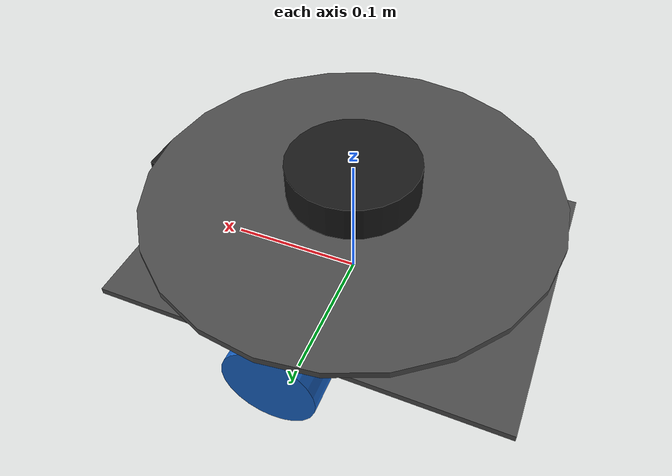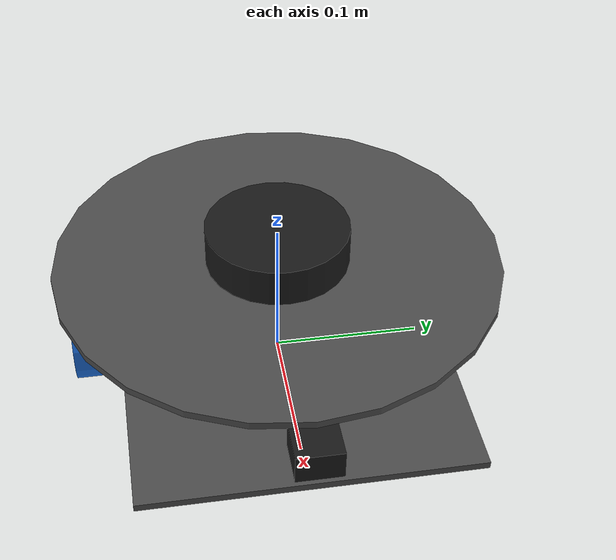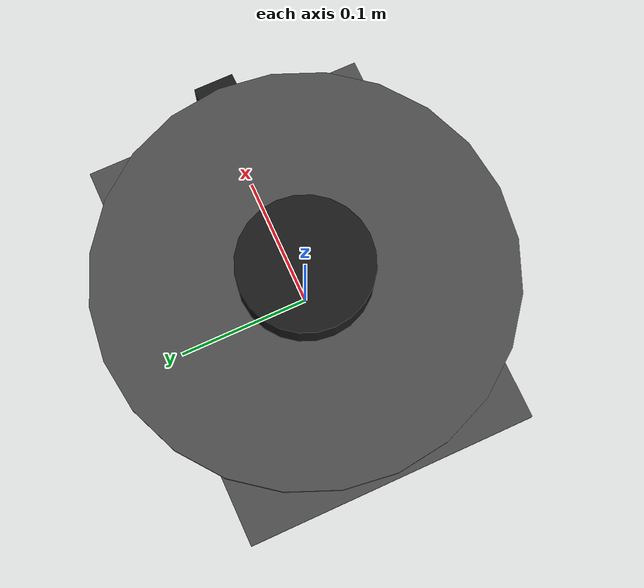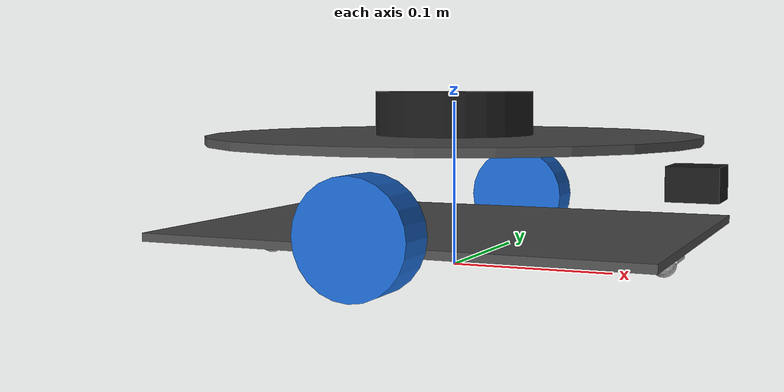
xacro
<?xml version="1.0"?>
<robot name="agv_robot" xmlns:xacro="http://www.ros.org/wiki/xacro">

  <!-- ====================== PROPERTIES ======================== -->

  <xacro:property name="platform_radius"    value="0.150"/>
  <xacro:property name="platform_thickness" value="0.005"/>

  <xacro:property name="wheel_radius"  value="0.0325"/>
  <xacro:property name="wheel_width"   value="0.026"/>
  <xacro:property name="wheel_track"   value="0.255"/>

  <!-- 지면 기준 절대 z → base_link 기준 상대 z 로 변환 시 wheel_radius 빼기 -->
  <xacro:property name="lower_plate_z" value="0.0225"/>
  <xacro:property name="upper_plate_z" value="0.0775"/>

  <xacro:property name="caster_radius" value="0.0075"/>
  <xacro:property name="caster_x"      value="0.130"/>

  <xacro:property name="lidar_radius"  value="0.0482"/>
  <xacro:property name="lidar_height"  value="0.0263"/>

  <xacro:property name="camera_x"      value="0.148"/>
  <xacro:property name="camera_z"      value="0.055"/>     <!-- ground 기준 -->

  <!-- ====================== INERTIA MACROS ==================== -->

  <xacro:macro name="inertia_cylinder" params="mass r l">
    <inertial>
      <mass value="${mass}"/>
      <inertia
        ixx="${mass*(3*r*r+l*l)/12}"
        ixy="0"
        ixz="0"
        iyy="${mass*(3*r*r+l*l)/12}"
        iyz="0"
        izz="${mass*r*r/2}"/>
    </inertial>
  </xacro:macro>

  <xacro:macro name="inertia_sphere" params="mass r">
    <inertial>
      <mass value="${mass}"/>
      <inertia
        ixx="${2*mass*r*r/5}"
        ixy="0"
        ixz="0"
        iyy="${2*mass*r*r/5}"
        iyz="0"
        izz="${2*mass*r*r/5}"/>
    </inertial>
  </xacro:macro>

  <xacro:macro name="inertia_box" params="mass x y z">
    <inertial>
      <mass value="${mass}"/>
      <inertia
        ixx="${mass*(y*y+z*z)/12}"
        ixy="0"
        ixz="0"
        iyy="${mass*(x*x+z*z)/12}"
        iyz="0"
        izz="${mass*(x*x+y*y)/12}"/>
    </inertial>
  </xacro:macro>

  <!-- ====================== BASE LINKS ======================== -->

  <link name="base_footprint"/>

  <link name="base_link">
    <visual>
      <geometry><box size="0.001 0.001 0.001"/></geometry>
    </visual>

    <!-- [추가] base_link inertial: Gazebo 자동 inertia 경고 방지용 더미 -->
    <xacro:inertia_box mass="0.001" x="0.001" y="0.001" z="0.001"/>
  </link>

  <joint name="base_footprint_joint" type="fixed">
    <parent link="base_footprint"/>
    <child link="base_link"/>
    <origin xyz="0 0 ${wheel_radius}" rpy="0 0 0"/>
  </joint>

  <!-- ====================== LOWER PLATE ======================= -->

  <link name="lower_plate">
    <visual>
      <geometry>
        <box size="${2*platform_radius}
                   ${wheel_track - wheel_width - 0.010}
                   ${platform_thickness}"/>
      </geometry>
      <material name="dark_gray">
        <color rgba="0.3 0.3 0.3 1.0"/>
      </material>
    </visual>

    <!-- collision: 바퀴(wheel_width/2 + 5mm 여유) 구간을 제외한 중앙 box로 근사 -->
    <!-- Y폭 = 2 * (wheel_track/2 - wheel_width/2 - 0.005) = 0.219m -->
    <collision>
      <geometry>
        <box size="${2*platform_radius}
                   ${wheel_track - wheel_width - 0.010}
                   ${platform_thickness}"/>
      </geometry>
    </collision>

    <xacro:inertia_cylinder
      mass="0.8"
      r="${platform_radius}"
      l="${platform_thickness}"/>
  </link>

  <joint name="lower_plate_joint" type="fixed">
    <parent link="base_link"/>
    <child link="lower_plate"/>
    <origin xyz="0 0 ${lower_plate_z - wheel_radius}" rpy="0 0 0"/>
  </joint>

  <!-- ====================== UPPER PLATE ======================= -->

  <link name="upper_plate">
    <visual>
      <geometry>
        <cylinder radius="${platform_radius}"
                  length="${platform_thickness}"/>
      </geometry>
      <material name="dark_gray"/>
    </visual>

    <collision>
      <geometry>
        <cylinder radius="${platform_radius}"
                  length="${platform_thickness}"/>
      </geometry>
    </collision>

    <xacro:inertia_cylinder
      mass="0.6"
      r="${platform_radius}"
      l="${platform_thickness}"/>
  </link>

  <joint name="upper_plate_joint" type="fixed">
    <parent link="base_link"/>
    <child link="upper_plate"/>
    <origin xyz="0 0 ${upper_plate_z - wheel_radius}" rpy="0 0 0"/>
  </joint>

  <!-- ====================== DRIVE WHEELS ====================== -->

  <xacro:macro name="drive_wheel" params="name side">

    <link name="${name}">
      <visual>
        <geometry>
          <cylinder radius="${wheel_radius}"
                    length="${wheel_width}"/>
        </geometry>
        <material name="blue">
          <color rgba="0.1 0.4 0.8 1.0"/>
        </material>
      </visual>

      <collision>
        <geometry>
          <cylinder radius="${wheel_radius}"
                    length="${wheel_width}"/>
        </geometry>
      </collision>

      <xacro:inertia_cylinder
        mass="0.15"
        r="${wheel_radius}"
        l="${wheel_width}"/>
    </link>

    <!-- [수정] 휠축: 표준 설정으로 복원. cylinder 길이방향(Z)을 Y축으로 회전시킴 -->
    <joint name="${name}_joint" type="continuous">
      <parent link="base_link"/>
      <child link="${name}"/>
      <origin xyz="0 ${side * wheel_track/2} 0"
              rpy="${pi/2} 0 0"/>
      <axis xyz="0 0 1"/>
      <dynamics damping="0.1" friction="0.1"/>
    </joint>

  </xacro:macro>

  <xacro:drive_wheel name="left_wheel"  side=" 1"/>
  <xacro:drive_wheel name="right_wheel" side="-1"/>

  <!-- ====================== BALL CASTERS ====================== -->
  <!-- [수정] ball joint를 fixed → 2축 continuous로 변경 (자유 회전 허용)   -->
  <!-- housing → (Y축 회전) → yaw_link → (X축 회전) → ball                  -->

  <xacro:macro name="ball_caster" params="name cx">

    <link name="${name}_housing">
      <visual>
        <geometry><box size="0.02 0.02 0.01"/></geometry>
        <material name="light_gray"><color rgba="0.7 0.7 0.7 1.0"/></material>
      </visual>
      <xacro:inertia_box mass="0.01" x="0.02" y="0.02" z="0.01"/>
    </link>

    <joint name="${name}_housing_joint" type="fixed">
      <parent link="base_link"/>
      <child link="${name}_housing"/>
      <origin xyz="${cx} 0 ${-wheel_radius + caster_radius + 0.0075}"
              rpy="0 0 0"/>
    </joint>

    <!-- [추가] 중간 더미 링크: 2축 자유 회전을 위한 가상 링크 -->
    <link name="${name}_yaw_link">
      <xacro:inertia_sphere mass="0.001" r="${caster_radius}"/>
    </link>

    <!-- 첫 번째 회전축: Z축 (좌우 미끄러짐 시 회전) -->
    <joint name="${name}_yaw_joint" type="continuous">
      <parent link="${name}_housing"/>
      <child link="${name}_yaw_link"/>
      <origin xyz="0 0 ${-caster_radius}" rpy="0 0 0"/>
      <axis xyz="0 0 1"/>
      <dynamics damping="0.0" friction="0.0"/>
    </joint>

    <link name="${name}_ball">
      <visual>
        <geometry><sphere radius="${caster_radius}"/></geometry>
        <material name="light_gray"/>
      </visual>
      <collision>
        <geometry><sphere radius="${caster_radius}"/></geometry>
      </collision>
      <xacro:inertia_sphere mass="0.02" r="${caster_radius}"/>
    </link>

    <!-- 두 번째 회전축: X축 (전후진 시 굴러감) -->
    <joint name="${name}_ball_joint" type="continuous">
      <parent link="${name}_yaw_link"/>
      <child link="${name}_ball"/>
      <origin xyz="0 0 0" rpy="0 0 0"/>
      <axis xyz="1 0 0"/>
      <dynamics damping="0.0" friction="0.0"/>
    </joint>

  </xacro:macro>

  <xacro:ball_caster name="front_caster" cx=" ${caster_x}"/>
  <xacro:ball_caster name="rear_caster"  cx="-${caster_x}"/>

  <!-- ========================= LIDAR ========================== -->

  <link name="lidar_link">
    <visual>
      <geometry>
        <cylinder radius="${lidar_radius}"
                  length="${lidar_height}"/>
      </geometry>
      <material name="black"><color rgba="0.1 0.1 0.1 1.0"/></material>
    </visual>

    <collision>
      <geometry>
        <cylinder radius="${lidar_radius}"
                  length="${lidar_height}"/>
      </geometry>
    </collision>

    <xacro:inertia_cylinder
      mass="0.17"
      r="${lidar_radius}"
      l="${lidar_height}"/>
  </link>

  <joint name="lidar_joint" type="fixed">
    <parent link="upper_plate"/>
    <child link="lidar_link"/>
    <origin xyz="0 0 ${platform_thickness/2 + lidar_height/2}"
            rpy="0 0 0"/>
  </joint>

  <!-- ======================== CAMERA ========================== -->

  <link name="camera_link">
    <visual>
      <geometry><box size="0.03 0.03 0.02"/></geometry>
      <material name="black"/>
    </visual>

    <collision>
      <geometry><box size="0.03 0.03 0.02"/></geometry>
    </collision>

    <xacro:inertia_box mass="0.05" x="0.03" y="0.03" z="0.02"/>
  </link>

  <joint name="camera_joint" type="fixed">
    <parent link="base_link"/>
    <child link="camera_link"/>
    <origin xyz="${camera_x} 0 ${camera_z - wheel_radius}"
            rpy="0 0 0"/>
  </joint>

  <!-- camera_optical_frame: ROS 카메라 좌표계 (Z-forward) -->
  <link name="camera_optical_frame"/>

  <joint name="camera_optical_joint" type="fixed">
    <parent link="camera_link"/>
    <child link="camera_optical_frame"/>
    <origin xyz="0 0 0" rpy="${-pi/2} 0 ${-pi/2}"/>
  </joint>

  <!-- ========== GAZEBO HARMONIC (gz-sim) 플러그인 ============ -->

  <!-- 차동구동 -->
  <gazebo>
    <plugin
      filename="gz-sim-diff-drive-system"
      name="gz::sim::systems::DiffDrive">

      <left_joint>left_wheel_joint</left_joint>
      <right_joint>right_wheel_joint</right_joint>

      <wheel_separation>${wheel_track}</wheel_separation>
      <wheel_radius>${wheel_radius}</wheel_radius>

      <max_linear_acceleration>1.0</max_linear_acceleration>
      <max_angular_acceleration>2.0</max_angular_acceleration>

      <topic>cmd_vel</topic>
      <odom_topic>odom</odom_topic>

      <frame_id>odom</frame_id>
      <child_frame_id>base_footprint</child_frame_id>
    </plugin>
  </gazebo>

  <!-- 볼캐스터 마찰 제거 -->
  <gazebo reference="front_caster_ball">
    <mu1>0.0</mu1>
    <mu2>0.0</mu2>
  </gazebo>
  <gazebo reference="rear_caster_ball">
    <mu1>0.0</mu1>
    <mu2>0.0</mu2>
  </gazebo>

  <!-- [수정] 바퀴 마찰: mu1=2.0, mu2=0.2 (이전 메시지 값) -->
  <gazebo reference="left_wheel">
    <mu1>1.0</mu1>
    <mu2>1.0</mu2>
    <kp>1e6</kp>
    <kd>1.0</kd>
  </gazebo>

  <gazebo reference="right_wheel">
    <mu1>1.0</mu1>
    <mu2>1.0</mu2>
    <kp>1e6</kp>
    <kd>1.0</kd>
  </gazebo>

  <!-- LiDAR 센서 : LDROBOT D200 (LD14P) -->
  <!-- Scan 6Hz, Ranging 4000Hz → 약 667 samples/rev, Range 0.1~8.0m, Accuracy ±5mm -->
  <gazebo reference="lidar_link">
    <sensor name="lidar_sensor" type="gpu_lidar">
      <topic>scan</topic>
      <gz_frame_id>lidar_link</gz_frame_id>
      <update_rate>6</update_rate>

      <lidar>
        <scan>
          <horizontal>
            <samples>667</samples>
            <resolution>1</resolution>
            <min_angle>-3.14159</min_angle>
            <max_angle>3.14159</max_angle>
          </horizontal>
        </scan>

        <range>
          <min>0.1</min>
          <max>8.0</max>
          <resolution>0.005</resolution>
        </range>

        <noise>
          <type>gaussian</type>
          <mean>0.0</mean>
          <stddev>0.005</stddev>
        </noise>
      </lidar>

      <always_on>true</always_on>
      <visualize>false</visualize>
    </sensor>
  </gazebo>

  <!-- 카메라 센서 : HBV-W202012HC (HBV-W202012HD V33 / 70° FOV / 1MP OV9726) -->
  <gazebo reference="camera_link">
    <sensor name="camera_sensor" type="camera">
      <topic>camera/image_raw</topic>
      <gz_frame_id>camera_link</gz_frame_id>
      <update_rate>30</update_rate>

      <camera>
        <horizontal_fov>1.2217</horizontal_fov>

        <image>
          <width>1280</width>
          <height>800</height>
          <format>R8G8B8</format>
        </image>

        <clip>
          <near>0.02</near>
          <far>300</far>
        </clip>

        <optical_frame_id>camera_optical_frame</optical_frame_id>
      </camera>

      <always_on>true</always_on>
      <visualize>false</visualize>
    </sensor>
  </gazebo>

</robot>
